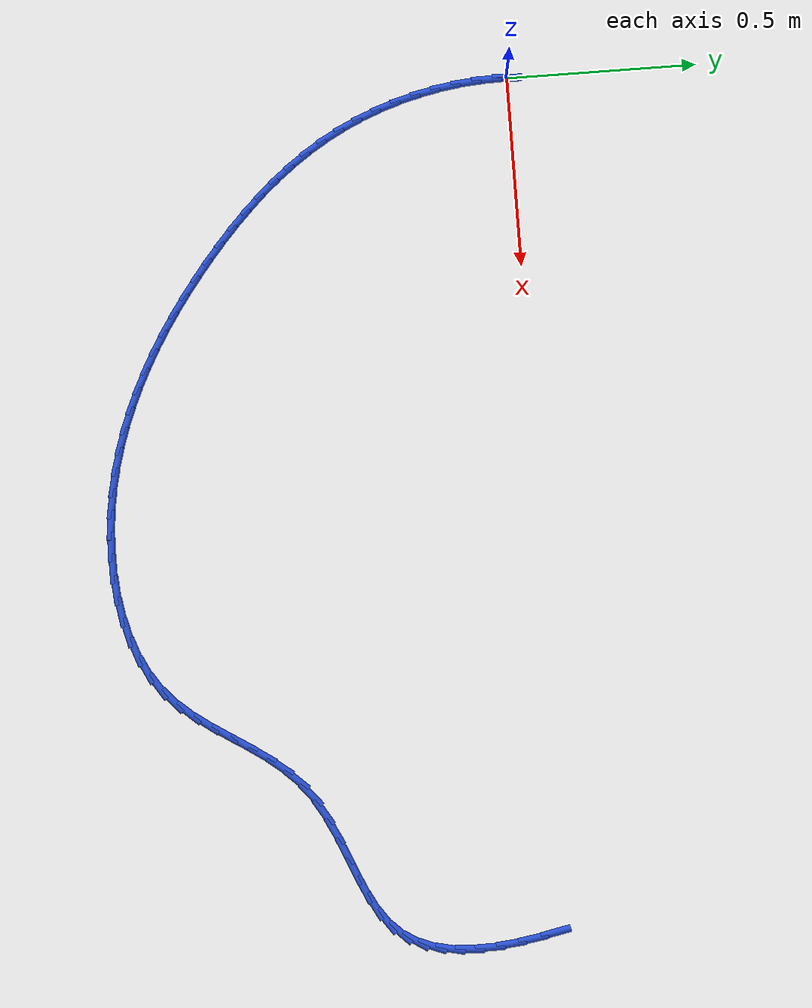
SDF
<sdf version="1.6">
 <world name="default">
  <model name="ground_plane">
   <static>1</static>
   <link name="link">
    <collision name="collision">
     <geometry><plane><normal>0 0 1</normal><size>100 100</size></plane></geometry>
     <surface><friction><ode><mu>100</mu><mu2>50</mu2></ode></friction></surface>
    </collision>
    <visual name="visual">
     <cast_shadows>0</cast_shadows>
     <geometry><plane><normal>0 0 1</normal><size>100 100</size></plane></geometry>
     <material>
      <script><uri>file://media/materials/scripts/gazebo.material</uri><name>Gazebo/WhiteGlow</name></script>
     </material>
    </visual>
   </link>
  </model>
  <model name="line">
   <link name="link_0">
    <pose>1.3877787807814457e-17 9.71445146547012e-17 0.01 0 1.57 1.5248309799948874</pose>
    <collision name="collision">
     <geometry><cylinder><radius>0.01</radius><length>0.08</length></cylinder></geometry>
    </collision>
    <visual name="visual">
     <material>
      <script><name>Gazebo/Blue</name><uri>file://media/materials/scripts/gazebo.material</uri></script>
     </material>
     <geometry><cylinder><radius>0.01</radius><length>0.08</length></cylinder></geometry>
    </visual>
   </link>
   <link name="link_66">
    <pose>2.2478355816843663 -0.04313378505650421 0.01 0 1.57 -1.3716373925065999</pose>
    <collision name="collision">
     <geometry><cylinder><radius>0.01</radius><length>0.08</length></cylinder></geometry>
    </collision>
    <visual name="visual">
     <material>
      <script><name>Gazebo/Blue</name><uri>file://media/materials/scripts/gazebo.material</uri></script>
     </material>
     <geometry><cylinder><radius>0.01</radius><length>0.08</length></cylinder></geometry>
    </visual>
   </link>
   <link name="link_67">
    <pose>2.259913606776077 -0.10297499952560735 0.01 0 1.57 -1.4176075282615463</pose>
    <collision name="collision">
     <geometry><cylinder><radius>0.01</radius><length>0.08</length></cylinder></geometry>
    </collision>
    <visual name="visual">
     <material>
      <script><name>Gazebo/Blue</name><uri>file://media/materials/scripts/gazebo.material</uri></script>
     </material>
     <geometry><cylinder><radius>0.01</radius><length>0.08</length></cylinder></geometry>
    </visual>
   </link>
   <link name="link_68">
    <pose>2.2688773537213165 -0.16103094256618689 0.01 0 1.57 -1.4786166034881216</pose>
    <collision name="collision">
     <geometry><cylinder><radius>0.01</radius><length>0.08</length></cylinder></geometry>
    </collision>
    <visual name="visual">
     <material>
      <script><name>Gazebo/Blue</name><uri>file://media/materials/scripts/gazebo.material</uri></script>
     </material>
     <geometry><cylinder><radius>0.01</radius><length>0.08</length></cylinder></geometry>
    </visual>
   </link>
   <link name="link_69">
    <pose>2.274036566480814 -0.21684139095821348 0.01 0 1.57 -1.5582854287663463</pose>
    <collision name="collision">
     <geometry><cylinder><radius>0.01</radius><length>0.08</length></cylinder></geometry>
    </collision>
    <visual name="visual">
     <material>
      <script><name>Gazebo/Blue</name><uri>file://media/materials/scripts/gazebo.material</uri></script>
     </material>
     <geometry><cylinder><radius>0.01</radius><length>0.08</length></cylinder></geometry>
    </visual>
   </link>
   <link name="link_70">
    <pose>2.2747009890152956 -0.2699461214816575 0.01 0 1.57 1.480519087290993</pose>
    <collision name="collision">
     <geometry><cylinder><radius>0.01</radius><length>0.08</length></cylinder></geometry>
    </collision>
    <visual name="visual">
     <material>
      <script><name>Gazebo/Blue</name><uri>file://media/materials/scripts/gazebo.material</uri></script>
     </material>
     <geometry><cylinder><radius>0.01</radius><length>0.08</length></cylinder></geometry>
    </visual>
   </link>
   <link name="link_71">
    <pose>2.2701803652854897 -0.31988491091648735 0.01 0 1.57 1.3499837089202333</pose>
    <collision name="collision">
     <geometry><cylinder><radius>0.01</radius><length>0.08</length></cylinder></geometry>
    </collision>
    <visual name="visual">
     <material>
      <script><name>Gazebo/Blue</name><uri>file://media/materials/scripts/gazebo.material</uri></script>
     </material>
     <geometry><cylinder><radius>0.01</radius><length>0.08</length></cylinder></geometry>
    </visual>
   </link>
   <link name="link_72">
    <pose>2.259784439252124 -0.3661975360426738 0.01 0 1.57 1.188841508886972</pose>
    <collision name="collision">
     <geometry><cylinder><radius>0.01</radius><length>0.08</length></cylinder></geometry>
    </collision>
    <visual name="visual">
     <material>
      <script><name>Gazebo/Blue</name><uri>file://media/materials/scripts/gazebo.material</uri></script>
     </material>
     <geometry><cylinder><radius>0.01</radius><length>0.08</length></cylinder></geometry>
    </visual>
   </link>
   <link name="link_73">
    <pose>2.2428229548759253 -0.4084237736401863 0.01 0 1.57 0.999558728883237</pose>
    <collision name="collision">
     <geometry><cylinder><radius>0.01</radius><length>0.08</length></cylinder></geometry>
    </collision>
    <visual name="visual">
     <material>
      <script><name>Gazebo/Blue</name><uri>file://media/materials/scripts/gazebo.material</uri></script>
     </material>
     <geometry><cylinder><radius>0.01</radius><length>0.08</length></cylinder></geometry>
    </visual>
   </link>
   <link name="link_74">
    <pose>2.218605656117622 -0.4461034004889948 0.01 0 1.57 0.7933441307225046</pose>
    <collision name="collision">
     <geometry><cylinder><radius>0.01</radius><length>0.08</length></cylinder></geometry>
    </collision>
    <visual name="visual">
     <material>
      <script><name>Gazebo/Blue</name><uri>file://media/materials/scripts/gazebo.material</uri></script>
     </material>
     <geometry><cylinder><radius>0.01</radius><length>0.08</length></cylinder></geometry>
    </visual>
   </link>
   <link name="link_75">
    <pose>2.1864455712171607 -0.4787786758867068 0.01 0 1.57 0.606242510000872</pose>
    <collision name="collision">
     <geometry><cylinder><radius>0.01</radius><length>0.08</length></cylinder></geometry>
    </collision>
    <visual name="visual">
     <material>
      <script><name>Gazebo/Blue</name><uri>file://media/materials/scripts/gazebo.material</uri></script>
     </material>
     <geometry><cylinder><radius>0.01</radius><length>0.08</length></cylinder></geometry>
    </visual>
   </link>
   <link name="link_76">
    <pose>2.1463927231323887 -0.5065489379489949 0.01 0 1.57 0.48262946654626293</pose>
    <collision name="collision">
     <geometry><cylinder><radius>0.01</radius><length>0.08</length></cylinder></geometry>
    </collision>
    <visual name="visual">
     <material>
      <script><name>Gazebo/Blue</name><uri>file://media/materials/scripts/gazebo.material</uri></script>
     </material>
     <geometry><cylinder><radius>0.01</radius><length>0.08</length></cylinder></geometry>
    </visual>
   </link>
   <link name="link_77">
    <pose>2.100161933061634 -0.5307719107929553 0.01 0 1.57 0.4145285025330547</pose>
    <collision name="collision">
     <geometry><cylinder><radius>0.01</radius><length>0.08</length></cylinder></geometry>
    </collision>
    <visual name="visual">
     <material>
      <script><name>Gazebo/Blue</name><uri>file://media/materials/scripts/gazebo.material</uri></script>
     </material>
     <geometry><cylinder><radius>0.01</radius><length>0.08</length></cylinder></geometry>
    </visual>
   </link>
   <link name="link_78">
    <pose>2.049696486640423 -0.5529780100021935 0.01 0 1.57 0.3905461989467908</pose>
    <collision name="collision">
     <geometry><cylinder><radius>0.01</radius><length>0.08</length></cylinder></geometry>
    </collision>
    <visual name="visual">
     <material>
      <script><name>Gazebo/Blue</name><uri>file://media/materials/scripts/gazebo.material</uri></script>
     </material>
     <geometry><cylinder><radius>0.01</radius><length>0.08</length></cylinder></geometry>
    </visual>
   </link>
   <link name="link_79">
    <pose>1.9969396695042834 -0.5746976511603149 0.01 0 1.57 0.40496106457578446</pose>
    <collision name="collision">
     <geometry><cylinder><radius>0.01</radius><length>0.08</length></cylinder></geometry>
    </collision>
    <visual name="visual">
     <material>
      <script><name>Gazebo/Blue</name><uri>file://media/materials/scripts/gazebo.material</uri></script>
     </material>
     <geometry><cylinder><radius>0.01</radius><length>0.08</length></cylinder></geometry>
    </visual>
   </link>
   <link name="link_80">
    <pose>1.9438347672887404 -0.5974612498509254 0.01 0 1.57 0.4571521012881223</pose>
    <collision name="collision">
     <geometry><cylinder><radius>0.01</radius><length>0.08</length></cylinder></geometry>
    </collision>
    <visual name="visual">
     <material>
      <script><name>Gazebo/Blue</name><uri>file://media/materials/scripts/gazebo.material</uri></script>
     </material>
     <geometry><cylinder><radius>0.01</radius><length>0.08</length></cylinder></geometry>
    </visual>
   </link>
   <link name="link_81">
    <pose>1.8923250656293205 -0.6227992216576311 0.01 0 1.57 0.5504749608985001</pose>
    <collision name="collision">
     <geometry><cylinder><radius>0.01</radius><length>0.08</length></cylinder></geometry>
    </collision>
    <visual name="visual">
     <material>
      <script><name>Gazebo/Blue</name><uri>file://media/materials/scripts/gazebo.material</uri></script>
     </material>
     <geometry><cylinder><radius>0.01</radius><length>0.08</length></cylinder></geometry>
    </visual>
   </link>
   <link name="link_82">
    <pose>1.8443538501615513 -0.6522419821640375 0.01 0 1.57 0.6867688658373488</pose>
    <collision name="collision">
     <geometry><cylinder><radius>0.01</radius><length>0.08</length></cylinder></geometry>
    </collision>
    <visual name="visual">
     <material>
      <script><name>Gazebo/Blue</name><uri>file://media/materials/scripts/gazebo.material</uri></script>
     </material>
     <geometry><cylinder><radius>0.01</radius><length>0.08</length></cylinder></geometry>
    </visual>
   </link>
   <link name="link_83">
    <pose>1.801725100624306 -0.6871940790047335 0.01 0 1.57 0.8219014208318045</pose>
    <collision name="collision">
     <geometry><cylinder><radius>0.01</radius><length>0.08</length></cylinder></geometry>
    </collision>
    <visual name="visual">
     <material>
      <script><name>Gazebo/Blue</name><uri>file://media/materials/scripts/gazebo.material</uri></script>
     </material>
     <geometry><cylinder><radius>0.01</radius><length>0.08</length></cylinder></geometry>
    </visual>
   </link>
   <link name="link_84">
    <pose>1.764376594680174 -0.7273738782998068 0.01 0 1.57 0.9197366446777614</pose>
    <collision name="collision">
     <geometry><cylinder><radius>0.01</radius><length>0.08</length></cylinder></geometry>
    </collision>
    <visual name="visual">
     <material>
      <script><name>Gazebo/Blue</name><uri>file://media/materials/scripts/gazebo.material</uri></script>
     </material>
     <geometry><cylinder><radius>0.01</radius><length>0.08</length></cylinder></geometry>
    </visual>
   </link>
   <link name="link_85">
    <pose>1.730913526172925 -0.7712957081766979 0.01 0 1.57 0.9793054993002259</pose>
    <collision name="collision">
     <geometry><cylinder><radius>0.01</radius><length>0.08</length></cylinder></geometry>
    </collision>
    <visual name="visual">
     <material>
      <script><name>Gazebo/Blue</name><uri>file://media/materials/scripts/gazebo.material</uri></script>
     </material>
     <geometry><cylinder><radius>0.01</radius><length>0.08</length></cylinder></geometry>
    </visual>
   </link>
   <link name="link_86">
    <pose>1.6999123158869844 -0.8174478992562543 0.01 0 1.57 1.0020044870316667</pose>
    <collision name="collision">
     <geometry><cylinder><radius>0.01</radius><length>0.08</length></cylinder></geometry>
    </collision>
    <visual name="visual">
     <material>
      <script><name>Gazebo/Blue</name><uri>file://media/materials/scripts/gazebo.material</uri></script>
     </material>
     <geometry><cylinder><radius>0.01</radius><length>0.08</length></cylinder></geometry>
    </visual>
   </link>
   <link name="link_87">
    <pose>1.669949384606779 -0.8643187821593215 0.01 0 1.57 0.9883791234906163</pose>
    <collision name="collision">
     <geometry><cylinder><radius>0.01</radius><length>0.08</length></cylinder></geometry>
    </collision>
    <visual name="visual">
     <material>
      <script><name>Gazebo/Blue</name><uri>file://media/materials/scripts/gazebo.material</uri></script>
     </material>
     <geometry><cylinder><radius>0.01</radius><length>0.08</length></cylinder></geometry>
    </visual>
   </link>
   <link name="link_88">
    <pose>1.6396011531167345 -0.9103966875067471 0.01 0 1.57 0.9372053674995455</pose>
    <collision name="collision">
     <geometry><cylinder><radius>0.01</radius><length>0.08</length></cylinder></geometry>
    </collision>
    <visual name="visual">
     <material>
      <script><name>Gazebo/Blue</name><uri>file://media/materials/scripts/gazebo.material</uri></script>
     </material>
     <geometry><cylinder><radius>0.01</radius><length>0.08</length></cylinder></geometry>
    </visual>
   </link>
   <link name="link_89">
    <pose>1.6074440422012766 -0.9541699459193776 0.01 0 1.57 0.8459423129086536</pose>
    <collision name="collision">
     <geometry><cylinder><radius>0.01</radius><length>0.08</length></cylinder></geometry>
    </collision>
    <visual name="visual">
     <material>
      <script><name>Gazebo/Blue</name><uri>file://media/materials/scripts/gazebo.material</uri></script>
     </material>
     <geometry><cylinder><radius>0.01</radius><length>0.08</length></cylinder></geometry>
    </visual>
   </link>
   <link name="link_90">
    <pose>1.572054472644831 -0.99412688801806 0.01 0 1.57 0.7142852025826811</pose>
    <collision name="collision">
     <geometry><cylinder><radius>0.01</radius><length>0.08</length></cylinder></geometry>
    </collision>
    <visual name="visual">
     <material>
      <script><name>Gazebo/Blue</name><uri>file://media/materials/scripts/gazebo.material</uri></script>
     </material>
     <geometry><cylinder><radius>0.01</radius><length>0.08</length></cylinder></geometry>
    </visual>
   </link>
   <link name="link_91">
    <pose>1.5320624621490146 -1.0288002539458017 0.01 0 1.57 0.5711861739449902</pose>
    <collision name="collision">
     <geometry><cylinder><radius>0.01</radius><length>0.08</length></cylinder></geometry>
    </collision>
    <visual name="visual">
     <material>
      <script><name>Gazebo/Blue</name><uri>file://media/materials/scripts/gazebo.material</uri></script>
     </material>
     <geometry><cylinder><radius>0.01</radius><length>0.08</length></cylinder></geometry>
    </visual>
   </link>
   <link name="link_92">
    <pose>1.487196571976282 -1.057633018933092 0.01 0 1.57 0.4437969994939492</pose>
    <collision name="collision">
     <geometry><cylinder><radius>0.01</radius><length>0.08</length></cylinder></geometry>
    </collision>
    <visual name="visual">
     <material>
      <script><name>Gazebo/Blue</name><uri>file://media/materials/scripts/gazebo.material</uri></script>
     </material>
     <geometry><cylinder><radius>0.01</radius><length>0.08</length></cylinder></geometry>
    </visual>
   </link>
   <link name="link_93">
    <pose>1.4382141581809698 -1.0809206006176049 0.01 0 1.57 0.3326658787156838</pose>
    <collision name="collision">
     <geometry><cylinder><radius>0.01</radius><length>0.08</length></cylinder></geometry>
    </collision>
    <visual name="visual">
     <material>
      <script><name>Gazebo/Blue</name><uri>file://media/materials/scripts/gazebo.material</uri></script>
     </material>
     <geometry><cylinder><radius>0.01</radius><length>0.08</length></cylinder></geometry>
    </visual>
   </link>
   <link name="link_94">
    <pose>1.3859122051611947 -1.098991252029485 0.01 0 1.57 0.2359604496017887</pose>
    <collision name="collision">
     <geometry><cylinder><radius>0.01</radius><length>0.08</length></cylinder></geometry>
    </collision>
    <visual name="visual">
     <material>
      <script><name>Gazebo/Blue</name><uri>file://media/materials/scripts/gazebo.material</uri></script>
     </material>
     <geometry><cylinder><radius>0.01</radius><length>0.08</length></cylinder></geometry>
    </visual>
   </link>
   <link name="link_95">
    <pose>1.3310876973150743 -1.112173226198876 0.01 0 1.57 0.15129364729872236</pose>
    <collision name="collision">
     <geometry><cylinder><radius>0.01</radius><length>0.08</length></cylinder></geometry>
    </collision>
    <visual name="visual">
     <material>
      <script><name>Gazebo/Blue</name><uri>file://media/materials/scripts/gazebo.material</uri></script>
     </material>
     <geometry><cylinder><radius>0.01</radius><length>0.08</length></cylinder></geometry>
    </visual>
   </link>
   <link name="link_96">
    <pose>1.274537619040725 -1.120794776155922 0.01 0 1.57 0.07621742941899114</pose>
    <collision name="collision">
     <geometry><cylinder><radius>0.01</radius><length>0.08</length></cylinder></geometry>
    </collision>
    <visual name="visual">
     <material>
      <script><name>Gazebo/Blue</name><uri>file://media/materials/scripts/gazebo.material</uri></script>
     </material>
     <geometry><cylinder><radius>0.01</radius><length>0.08</length></cylinder></geometry>
    </visual>
   </link>
   <link name="link_97">
    <pose>1.2170589547362627 -1.1251841549307677 0.01 0 1.57 0.008426434504912273</pose>
    <collision name="collision">
     <geometry><cylinder><radius>0.01</radius><length>0.08</length></cylinder></geometry>
    </collision>
    <visual name="visual">
     <material>
      <script><name>Gazebo/Blue</name><uri>file://media/materials/scripts/gazebo.material</uri></script>
     </material>
     <geometry><cylinder><radius>0.01</radius><length>0.08</length></cylinder></geometry>
    </visual>
   </link>
   <link name="link_98">
    <pose>1.159448688799805 -1.1256696155535575 0.01 0 1.57 -0.0542843102058383</pose>
    <collision name="collision">
     <geometry><cylinder><radius>0.01</radius><length>0.08</length></cylinder></geometry>
    </collision>
    <visual name="visual">
     <material>
      <script><name>Gazebo/Blue</name><uri>file://media/materials/scripts/gazebo.material</uri></script>
     </material>
     <geometry><cylinder><radius>0.01</radius><length>0.08</length></cylinder></geometry>
    </visual>
   </link>
   <link name="link_99">
    <pose>1.102476591033658 -1.1225738831071088 0.01 0 1.57 -0.11452843546587607</pose>
    <collision name="collision">
     <geometry><cylinder><radius>0.01</radius><length>0.08</length></cylinder></geometry>
    </collision>
    <visual name="visual">
     <material>
      <script><name>Gazebo/Blue</name><uri>file://media/materials/scripts/gazebo.material</uri></script>
     </material>
     <geometry><cylinder><radius>0.01</radius><length>0.08</length></cylinder></geometry>
    </visual>
   </link>
   <link name="link_100">
    <pose>1.0464873529053964 -1.116133338910015 0.01 0 1.57 -0.17311593061562555</pose>
    <collision name="collision">
     <geometry><cylinder><radius>0.01</radius><length>0.08</length></cylinder></geometry>
    </collision>
    <visual name="visual">
     <material>
      <script><name>Gazebo/Blue</name><uri>file://media/materials/scripts/gazebo.material</uri></script>
     </material>
     <geometry><cylinder><radius>0.01</radius><length>0.08</length></cylinder></geometry>
    </visual>
   </link>
   <link name="link_101">
    <pose>0.9914890537878696 -1.106515990164932 0.01 0 1.57 -0.22968905573731127</pose>
    <collision name="collision">
     <geometry><cylinder><radius>0.01</radius><length>0.08</length></cylinder></geometry>
    </collision>
    <visual name="visual">
     <material>
      <script><name>Gazebo/Blue</name><uri>file://media/materials/scripts/gazebo.material</uri></script>
     </material>
     <geometry><cylinder><radius>0.01</radius><length>0.08</length></cylinder></geometry>
    </visual>
   </link>
   <link name="link_102">
    <pose>0.937480554250171 -1.0938879715109124 0.01 0 1.57 -0.28394070595877846</pose>
    <collision name="collision">
     <geometry><cylinder><radius>0.01</radius><length>0.08</length></cylinder></geometry>
    </collision>
    <visual name="visual">
     <material>
      <script><name>Gazebo/Blue</name><uri>file://media/materials/scripts/gazebo.material</uri></script>
     </material>
     <geometry><cylinder><radius>0.01</radius><length>0.08</length></cylinder></geometry>
    </visual>
   </link>
   <link name="link_103">
    <pose>0.8844607148613975 -1.078415417587009 0.01 0 1.57 -0.3356410470033179</pose>
    <collision name="collision">
     <geometry><cylinder><radius>0.01</radius><length>0.08</length></cylinder></geometry>
    </collision>
    <visual name="visual">
     <material>
      <script><name>Gazebo/Blue</name><uri>file://media/materials/scripts/gazebo.material</uri></script>
     </material>
     <geometry><cylinder><radius>0.01</radius><length>0.08</length></cylinder></geometry>
    </visual>
   </link>
   <link name="link_104">
    <pose>0.832428396190644 -1.0602644630322757 0.01 0 1.57 -0.38463450293894474</pose>
    <collision name="collision">
     <geometry><cylinder><radius>0.01</radius><length>0.08</length></cylinder></geometry>
    </collision>
    <visual name="visual">
     <material>
      <script><name>Gazebo/Blue</name><uri>file://media/materials/scripts/gazebo.material</uri></script>
     </material>
     <geometry><cylinder><radius>0.01</radius><length>0.08</length></cylinder></geometry>
    </visual>
   </link>
   <link name="link_105">
    <pose>0.7813824588070052 -1.0396012424857648 0.01 0 1.57 -0.4308325647175147</pose>
    <collision name="collision">
     <geometry><cylinder><radius>0.01</radius><length>0.08</length></cylinder></geometry>
    </collision>
    <visual name="visual">
     <material>
      <script><name>Gazebo/Blue</name><uri>file://media/materials/scripts/gazebo.material</uri></script>
     </material>
     <geometry><cylinder><radius>0.01</radius><length>0.08</length></cylinder></geometry>
    </visual>
   </link>
   <link name="link_106">
    <pose>0.7313217632795761 -1.0165918905865288 0.01 0 1.57 -0.4742040302490652</pose>
    <collision name="collision">
     <geometry><cylinder><radius>0.01</radius><length>0.08</length></cylinder></geometry>
    </collision>
    <visual name="visual">
     <material>
      <script><name>Gazebo/Blue</name><uri>file://media/materials/scripts/gazebo.material</uri></script>
     </material>
     <geometry><cylinder><radius>0.01</radius><length>0.08</length></cylinder></geometry>
    </visual>
   </link>
   <link name="link_107">
    <pose>0.6822451701774513 -0.9914025419736214 0.01 0 1.57 -0.5147641339177067</pose>
    <collision name="collision">
     <geometry><cylinder><radius>0.01</radius><length>0.08</length></cylinder></geometry>
    </collision>
    <visual name="visual">
     <material>
      <script><name>Gazebo/Blue</name><uri>file://media/materials/scripts/gazebo.material</uri></script>
     </material>
     <geometry><cylinder><radius>0.01</radius><length>0.08</length></cylinder></geometry>
    </visual>
   </link>
   <link name="link_108">
    <pose>0.6341515400697277 -0.9641993312860958 0.01 0 1.57 -0.5525637036602636</pose>
    <collision name="collision">
     <geometry><cylinder><radius>0.01</radius><length>0.08</length></cylinder></geometry>
    </collision>
    <visual name="visual">
     <material>
      <script><name>Gazebo/Blue</name><uri>file://media/materials/scripts/gazebo.material</uri></script>
     </material>
     <geometry><cylinder><radius>0.01</radius><length>0.08</length></cylinder></geometry>
    </visual>
   </link>
   <link name="link_109">
    <pose>0.5870397335254989 -0.9351483931630044 0.01 0 1.57 -0.5876791142531258</pose>
    <collision name="collision">
     <geometry><cylinder><radius>0.01</radius><length>0.08</length></cylinder></geometry>
    </collision>
    <visual name="visual">
     <material>
      <script><name>Gazebo/Blue</name><uri>file://media/materials/scripts/gazebo.material</uri></script>
     </material>
     <geometry><cylinder><radius>0.01</radius><length>0.08</length></cylinder></geometry>
    </visual>
   </link>
   <link name="link_110">
    <pose>0.5409086111138603 -0.9044158622434002 0.01 0 1.57 -0.6202034667815329</pose>
    <collision name="collision">
     <geometry><cylinder><radius>0.01</radius><length>0.08</length></cylinder></geometry>
    </collision>
    <visual name="visual">
     <material>
      <script><name>Gazebo/Blue</name><uri>file://media/materials/scripts/gazebo.material</uri></script>
     </material>
     <geometry><cylinder><radius>0.01</radius><length>0.08</length></cylinder></geometry>
    </visual>
   </link>
   <link name="link_111">
    <pose>0.4957570334039075 -0.8721678731663367 0.01 0 1.57 -0.6502391568961093</pose>
    <collision name="collision">
     <geometry><cylinder><radius>0.01</radius><length>0.08</length></cylinder></geometry>
    </collision>
    <visual name="visual">
     <material>
      <script><name>Gazebo/Blue</name><uri>file://media/materials/scripts/gazebo.material</uri></script>
     </material>
     <geometry><cylinder><radius>0.01</radius><length>0.08</length></cylinder></geometry>
    </visual>
   </link>
   <link name="link_112">
    <pose>0.45158386096473546 -0.8385705605708665 0.01 0 1.57 -0.6780605107621285</pose>
    <collision name="collision">
     <geometry><cylinder><radius>0.01</radius><length>0.08</length></cylinder></geometry>
    </collision>
    <visual name="visual">
     <material>
      <script><name>Gazebo/Blue</name><uri>file://media/materials/scripts/gazebo.material</uri></script>
     </material>
     <geometry><cylinder><radius>0.01</radius><length>0.08</length></cylinder></geometry>
    </visual>
   </link>
   <link name="link_113">
    <pose>0.40839393353787773 -0.8037828617186215 0.01 0 1.57 -0.7069073579965965</pose>
    <collision name="collision">
     <geometry><cylinder><radius>0.01</radius><length>0.08</length></cylinder></geometry>
    </collision>
    <visual name="visual">
     <material>
      <script><name>Gazebo/Blue</name><uri>file://media/materials/scripts/gazebo.material</uri></script>
     </material>
     <geometry><cylinder><radius>0.01</radius><length>0.08</length></cylinder></geometry>
    </visual>
   </link>
   <link name="link_114">
    <pose>0.36630298419271556 -0.7678302269811584 0.01 0 1.57 -0.7396734760845507</pose>
    <collision name="collision">
     <geometry><cylinder><radius>0.01</radius><length>0.08</length></cylinder></geometry>
    </collision>
    <visual name="visual">
     <material>
      <script><name>Gazebo/Blue</name><uri>file://media/materials/scripts/gazebo.material</uri></script>
     </material>
     <geometry><cylinder><radius>0.01</radius><length>0.08</length></cylinder></geometry>
    </visual>
   </link>
   <link name="link_115">
    <pose>0.3255245978919103 -0.7306203183547059 0.01 0 1.57 -0.7765910923227137</pose>
    <collision name="collision">
     <geometry><cylinder><radius>0.01</radius><length>0.08</length></cylinder></geometry>
    </collision>
    <visual name="visual">
     <material>
      <script><name>Gazebo/Blue</name><uri>file://media/materials/scripts/gazebo.material</uri></script>
     </material>
     <geometry><cylinder><radius>0.01</radius><length>0.08</length></cylinder></geometry>
    </visual>
   </link>
   <link name="link_116">
    <pose>0.2862757176780546 -0.6920567555756474 0.01 0 1.57 -0.8177822813573515</pose>
    <collision name="collision">
     <geometry><cylinder><radius>0.01</radius><length>0.08</length></cylinder></geometry>
    </collision>
    <visual name="visual">
     <material>
      <script><name>Gazebo/Blue</name><uri>file://media/materials/scripts/gazebo.material</uri></script>
     </material>
     <geometry><cylinder><radius>0.01</radius><length>0.08</length></cylinder></geometry>
    </visual>
   </link>
   <link name="link_117">
    <pose>0.24877328659373904 -0.6520431583803651 0.01 0 1.57 -0.8633339812292979</pose>
    <collision name="collision">
     <geometry><cylinder><radius>0.01</radius><length>0.08</length></cylinder></geometry>
    </collision>
    <visual name="visual">
     <material>
      <script><name>Gazebo/Blue</name><uri>file://media/materials/scripts/gazebo.material</uri></script>
     </material>
     <geometry><cylinder><radius>0.01</radius><length>0.08</length></cylinder></geometry>
    </visual>
   </link>
   <link name="link_118">
    <pose>0.21323424768155458 -0.6104831465052405 0.01 0 1.57 -0.9132742538434434</pose>
    <collision name="collision">
     <geometry><cylinder><radius>0.01</radius><length>0.08</length></cylinder></geometry>
    </collision>
    <visual name="visual">
     <material>
      <script><name>Gazebo/Blue</name><uri>file://media/materials/scripts/gazebo.material</uri></script>
     </material>
     <geometry><cylinder><radius>0.01</radius><length>0.08</length></cylinder></geometry>
    </visual>
   </link>
   <link name="link_119">
    <pose>0.17987554398409356 -0.5672803396866573 0.01 0 1.57 -0.9675454484023235</pose>
    <collision name="collision">
     <geometry><cylinder><radius>0.01</radius><length>0.08</length></cylinder></geometry>
    </collision>
    <visual name="visual">
     <material>
      <script><name>Gazebo/Blue</name><uri>file://media/materials/scripts/gazebo.material</uri></script>
     </material>
     <geometry><cylinder><radius>0.01</radius><length>0.08</length></cylinder></geometry>
    </visual>
   </link>
   <link name="link_120">
    <pose>0.14891411854394682 -0.5223383576609976 0.01 0 1.57 -1.0259764808850844</pose>
    <collision name="collision">
     <geometry><cylinder><radius>0.01</radius><length>0.08</length></cylinder></geometry>
    </collision>
    <visual name="visual">
     <material>
      <script><name>Gazebo/Blue</name><uri>file://media/materials/scripts/gazebo.material</uri></script>
     </material>
     <geometry><cylinder><radius>0.01</radius><length>0.08</length></cylinder></geometry>
    </visual>
   </link>
   <link name="link_121">
    <pose>0.12056691440370569 -0.47556082016464357 0.01 0 1.57 -1.087794575605316</pose>
    <collision name="collision">
     <geometry><cylinder><radius>0.01</radius><length>0.08</length></cylinder></geometry>
    </collision>
    <visual name="visual">
     <material>
      <script><name>Gazebo/Blue</name><uri>file://media/materials/scripts/gazebo.material</uri></script>
     </material>
     <geometry><cylinder><radius>0.01</radius><length>0.08</length></cylinder></geometry>
    </visual>
   </link>
   <link name="link_122">
    <pose>0.09503791706076613 -0.42688150703118194 0.01 0 1.57 -1.1491169293706456</pose>
    <collision name="collision">
     <geometry><cylinder><radius>0.01</radius><length>0.08</length></cylinder></geometry>
    </collision>
    <visual name="visual">
     <material>
      <script><name>Gazebo/Blue</name><uri>file://media/materials/scripts/gazebo.material</uri></script>
     </material>
     <geometry><cylinder><radius>0.01</radius><length>0.08</length></cylinder></geometry>
    </visual>
   </link>
   <link name="link_123">
    <pose>0.07242691703151229 -0.3764767232568022 0.01 0 1.57 -1.208570984953165</pose>
    <collision name="collision">
     <geometry><cylinder><radius>0.01</radius><length>0.08</length></cylinder></geometry>
    </collision>
    <visual name="visual">
     <material>
      <script><name>Gazebo/Blue</name><uri>file://media/materials/scripts/gazebo.material</uri></script>
     </material>
     <geometry><cylinder><radius>0.01</radius><length>0.08</length></cylinder></geometry>
    </visual>
   </link>
   <link name="link_124">
    <pose>0.052783488523621774 -0.3246396577635477 0.01 0 1.57 -1.2666773289151942</pose>
    <collision name="collision">
     <geometry><cylinder><radius>0.01</radius><length>0.08</length></cylinder></geometry>
    </collision>
    <visual name="visual">
     <material>
      <script><name>Gazebo/Blue</name><uri>file://media/materials/scripts/gazebo.material</uri></script>
     </material>
     <geometry><cylinder><radius>0.01</radius><length>0.08</length></cylinder></geometry>
    </visual>
   </link>
   <link name="link_125">
    <pose>0.03615688297593532 -0.27166425075306705 0.01 0 1.57 -1.3239721986104864</pose>
    <collision name="collision">
     <geometry><cylinder><radius>0.01</radius><length>0.08</length></cylinder></geometry>
    </collision>
    <visual name="visual">
     <material>
      <script><name>Gazebo/Blue</name><uri>file://media/materials/scripts/gazebo.material</uri></script>
     </material>
     <geometry><cylinder><radius>0.01</radius><length>0.08</length></cylinder></geometry>
    </visual>
   </link>
   <link name="link_126">
    <pose>0.02259635182729377 -0.2178444424270091 0.01 0 1.57 -1.3809963313659472</pose>
    <collision name="collision">
     <geometry><cylinder><radius>0.01</radius><length>0.08</length></cylinder></geometry>
    </collision>
    <visual name="visual">
     <material>
      <script><name>Gazebo/Blue</name><uri>file://media/materials/scripts/gazebo.material</uri></script>
     </material>
     <geometry><cylinder><radius>0.01</radius><length>0.08</length></cylinder></geometry>
    </visual>
   </link>
   <link name="link_127">
    <pose>0.012151146516538557 -0.1634741729870245 0.01 0 1.57 -1.4382977467133289</pose>
    <collision name="collision">
     <geometry><cylinder><radius>0.01</radius><length>0.08</length></cylinder></geometry>
    </collision>
    <visual name="visual">
     <material>
      <script><name>Gazebo/Blue</name><uri>file://media/materials/scripts/gazebo.material</uri></script>
     </material>
     <geometry><cylinder><radius>0.01</radius><length>0.08</length></cylinder></geometry>
    </visual>
   </link>
   <link name="link_128">
    <pose>0.004870518482510498 -0.10884738263476187 0.01 0 1.57 -1.4964356833464887</pose>
    <collision name="collision">
     <geometry><cylinder><radius>0.01</radius><length>0.08</length></cylinder></geometry>
    </collision>
    <visual name="visual">
     <material>
      <script><name>Gazebo/Blue</name><uri>file://media/materials/scripts/gazebo.material</uri></script>
     </material>
     <geometry><cylinder><radius>0.01</radius><length>0.08</length></cylinder></geometry>
    </visual>
   </link>
   <link name="link_129">
    <pose>0.0008037191640506425 -0.05425801157187056 0.01 0 1.57 -1.5559844978344914</pose>
    <collision name="collision">
     <geometry><cylinder><radius>0.01</radius><length>0.08</length></cylinder></geometry>
    </collision>
    <visual name="visual">
     <material>
      <script><name>Gazebo/Blue</name><uri>file://media/materials/scripts/gazebo.material</uri></script>
     </material>
     <geometry><cylinder><radius>0.01</radius><length>0.08</length></cylinder></geometry>
    </visual>
   </link>
   <link name="link_130">
    <pose>1.734723475976807e-17 5.551115123125783e-17 0.01 0 1.57 1.5240564680101258</pose>
    <collision name="collision">
     <geometry><cylinder><radius>0.01</radius><length>0.08</length></cylinder></geometry>
    </collision>
    <visual name="visual">
     <material>
      <script><name>Gazebo/Blue</name><uri>file://media/materials/scripts/gazebo.material</uri></script>
     </material>
     <geometry><cylinder><radius>0.01</radius><length>0.08</length></cylinder></geometry>
    </visual>
   </link>
  </model>
 </world>
</sdf>
